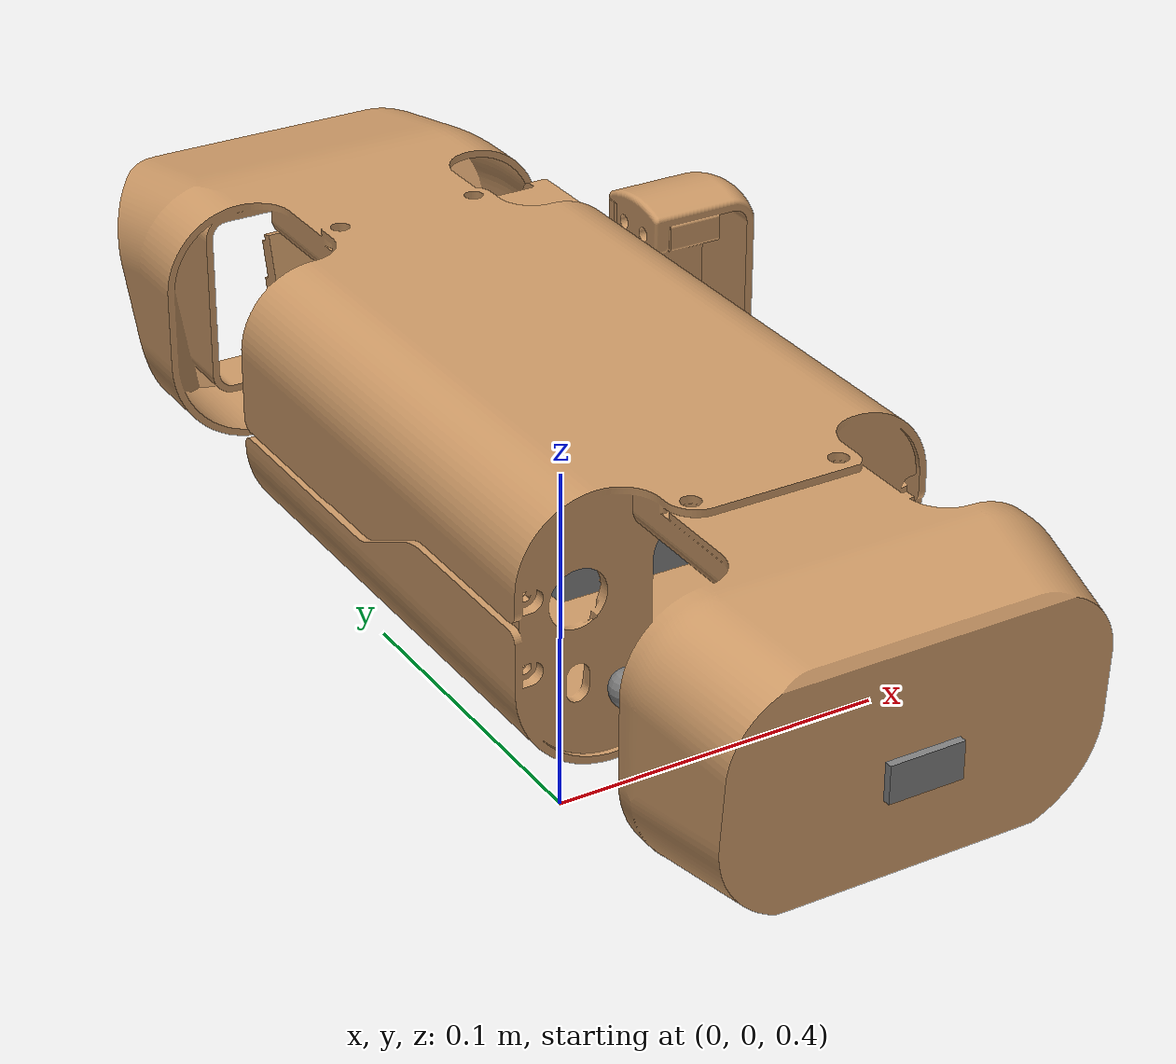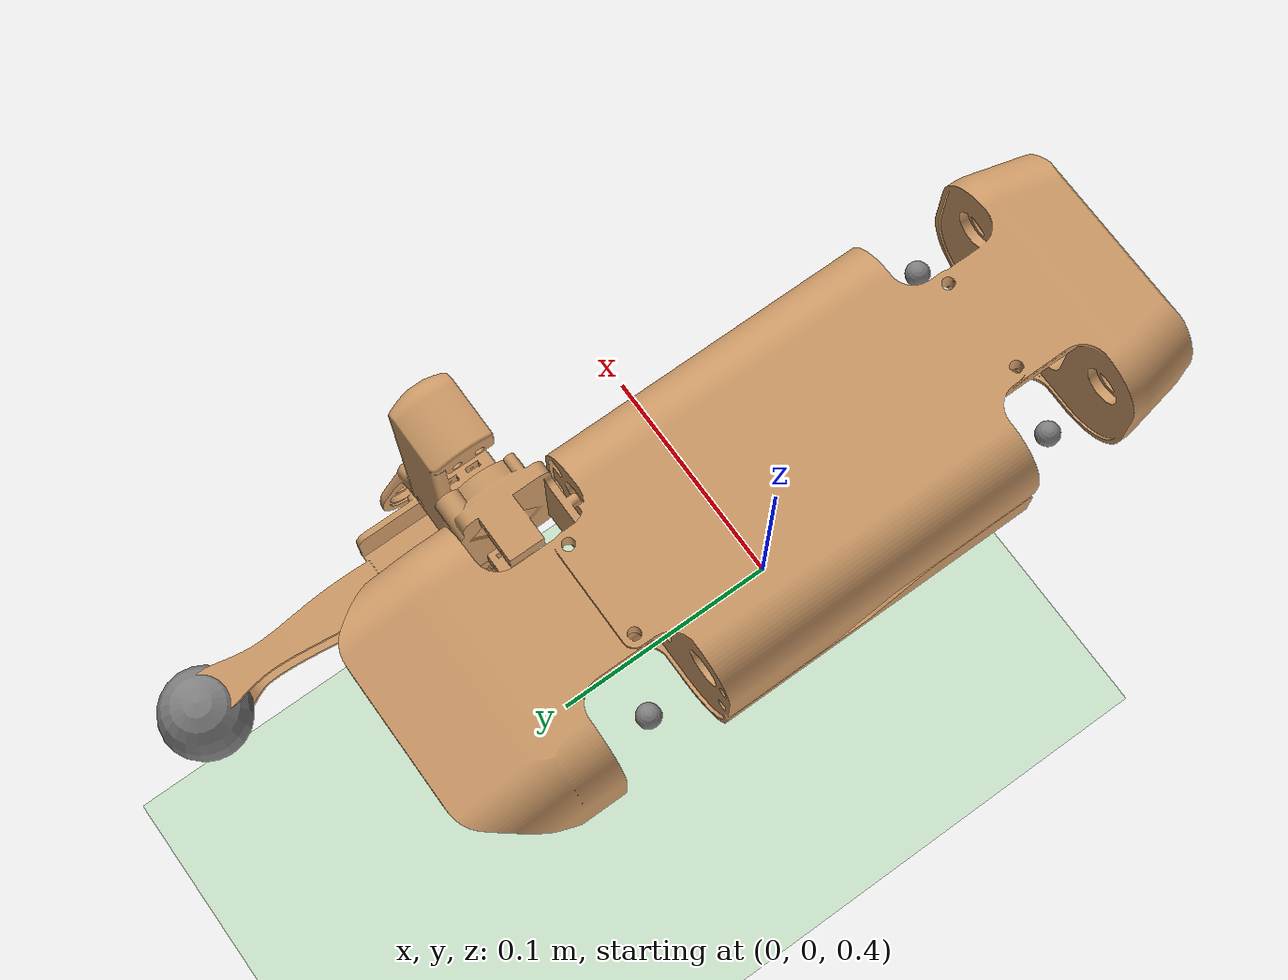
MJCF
<mujoco model="qrpfra">
    <include file="qrpfra_v3_leg_ik_right.xml"/>

    <default>
        <joint armature="1" damping="1" limited="true"/>
        <geom conaffinity="0" condim="3" density="1.0" friction="1 0.5 0.5" margin="0.01" rgba="0.8 0.6 0.4 1"/>
    </default>

    <asset>
        <texture builtin="gradient" height="100" rgb1="1 1 1" rgb2="0 0 0" type="skybox" width="100"/>
        <texture builtin="flat" height="1278" mark="cross" markrgb="1 1 1" name="texgeom" random="0.01" rgb1="0 0 0.4" rgb2="0.8 0.6 0.4" type="cube" width="127"/>
        <texture builtin="checker"  name="texplane" rgb1="0.02 0.02 0.12" rgb2="0.98 0.98 0.88" type="2d" width="100" height="100"/>
        <material name="MatPlane" reflectance="0.8" shininess="1" specular="1" texrepeat="60 60" texture="texplane"/>
    </asset>

    <worldbody>
        <light cutoff="100" diffuse="1 1 1" dir="-0 0 -1.3" directional="true" exponent="1" pos="0 0 1.3" specular=".1 .1 .1"/>
        <!--geom conaffinity="1" condim="3" friction="1 0.6 0.6" material="MatPlane" name="floor" pos="0 0 -0.05" rgba="0.8 0.9 0.8 1" size="50 50 0.05" type="box"/-->
        <geom conaffinity="1" condim="3" material="MatPlane" name="floor" pos="0 0 0" rgba="0.8 0.9 0.8 1" size="40 40 40" type="plane"/>
        <!--geom name="floor" size="0 0 0.05" type="plane" material="plane"/-->
    </worldbody>
</mujoco>

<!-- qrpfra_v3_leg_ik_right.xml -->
<mujoco model="qrpfra_v3_ik_model">
    <compiler angle="degree" coordinate="local" inertiafromgeom="true" convexhull="true"/>
    <option integrator="RK4" timestep="0.01" gravity="0 0 -9.81" density="1.24"/>

    <default>
        <joint armature="1" damping="1" limited="true"/>
        <geom conaffinity="0" condim="3" density="1.24" friction="1 0.5 0.5" margin="0.01" rgba="0.8 0.6 0.4 1"/>

        <default class="servo_motors">
            <position ctrllimited="true" ctrlrange="-100 100" gear="95"/>
        </default>

        <default class="joint_def">
            <joint pos="0 0 0" range="-60 60" type="hinge" damping="150"/>
        </default>

        <default class="Left_foot_Site">
            <site pos="-0.015 0.12 0" type="sphere" size="0.02"/>
        </default>

        <default class="Right_foot_Site">
            <site pos="0.015 0.12 0" type="sphere" size="0.02"/>
        </default>

    </default>

    <asset>
        <mesh name="main_body" file="/Users/deniz/PycharmProjects/QRPfRA_Senior_Project/QRPfRA_sim_body_STLs/QRPfRA_body_m.stl"/>
        <mesh name="Left_Hind_Limb" file="/Users/deniz/PycharmProjects/QRPfRA_Senior_Project/QRPfRA_sim_body_STLs/QRPfRA_left_hindlimb_m.stl"/>
        <mesh name="Left_MidLimb" file="/Users/deniz/PycharmProjects/QRPfRA_Senior_Project/QRPfRA_sim_body_STLs/QRPfRA_left_midlimb_m.stl"/>
        <mesh name="Left_Wrist" file="/Users/deniz/PycharmProjects/QRPfRA_Senior_Project/QRPfRA_sim_body_STLs/QRPfRA_left_wrist_m.stl"/>
        <mesh name="Right_Hind_Limb" file="/Users/deniz/PycharmProjects/QRPfRA_Senior_Project/QRPfRA_sim_body_STLs/QRPfRA_right_hindlimb_m.stl"/>
        <mesh name="Right_MidLimb" file="/Users/deniz/PycharmProjects/QRPfRA_Senior_Project/QRPfRA_sim_body_STLs/QRPfRA_right_midlimb_m.stl"/>
        <mesh name="Right_Wrist" file="/Users/deniz/PycharmProjects/QRPfRA_Senior_Project/QRPfRA_sim_body_STLs/QRPfRA_right_wrist_m.stl"/>
    </asset>

    <worldbody>
        <body name="base_link" pos="0 0 0.5">
            <camera name="track" mode="trackcom" pos="0 -1 0.3" xyaxes="1 0 0 0 0 1"/>

            <geom type="mesh" mesh="main_body" mass="2" friction="0.3" density="1240" />
            <!--joint limited="true" margin="0.01" name="root" pos="0 0 0" type="free" stiffness="0" damping="0" frictionloss="0" armature="0"/-->

            <site name="base_link_Site" pos="0 0 0" type="box" size="0.03 0.05 0.01"/>

            <site name="head_rangefinder" pos="0 0.14 0" type="box" size="0.01 0.005 0.001" euler="-90 0 0"/>
            <site name="rear_rangefinder" pos="0 -0.155 0" type="box" size="0.01 0.005 0.001" euler="90 0 0"/>

            <site name="FL_Leg_ref" pos="-0.04 0.0875 0.0025"/>
            <site name="RL_Leg_ref" pos="-0.04 -0.0975 0.0025"/>
            <site name="FR_Leg_ref" pos="0.04 0.0875 0.0025"/>
            <site name="RR_Leg_ref" pos="0.04 -0.0975 0.0025"/>

            <body name="front_Right_Hind_Limb" pos="0.04 0.065 0.013">
                <joint class="joint_def" axis="0 1 0" name="FR_hind_to_base" />
                <geom type="mesh" mesh="Right_Hind_Limb" mass="0.150" density="1240"/>

                <body name="front_Right_MidLimb" pos="0.025 0.023 -0.0105" euler="90 0 0">
                    <joint class="joint_def" axis="1 0 0" name="FR_mid_to_base"  />
                    <geom type="mesh" mesh="Right_MidLimb" mass="0.350" density="1240"/>

                    <body name="front_Right_Wrist" pos="0.005 -0.107 -0.013" euler="-90 0 0">
                        <joint class="joint_def" axis="1 0 0" name="FR_wrist_to_mid" />
                        <geom type="mesh" mesh="Right_Wrist" mass="0.350" density="1240"/>

                        <site name="front_Right_Wrist_Site" class="Right_foot_Site"/>

                    </body>
                </body>
            </body>

        </body>

    </worldbody>

    <actuator>

        <position class="servo_motors" joint="FR_hind_to_base" name="FR_Hind2Base"/>
        <position class="servo_motors" joint="FR_mid_to_base" name="FR_Mid2Hind"/>
        <position class="servo_motors" joint="FR_wrist_to_mid" name="FR_Wrist2Mid"/>

    </actuator>

    <sensor>

        <framepos name="Right_Foot_pos" reftype="site" refname="FR_Leg_ref" objtype="site" objname="front_Right_Wrist_Site"/>
        <jointpos name="FR_Hind2Base_angle" joint="FR_hind_to_base"/>
        <jointpos name="FR_Mid2Hind_angle" joint="FR_mid_to_base"/>
        <jointpos name="FR_Wrist2Mid_angle" joint="FR_wrist_to_mid"/>

    </sensor>

</mujoco>
